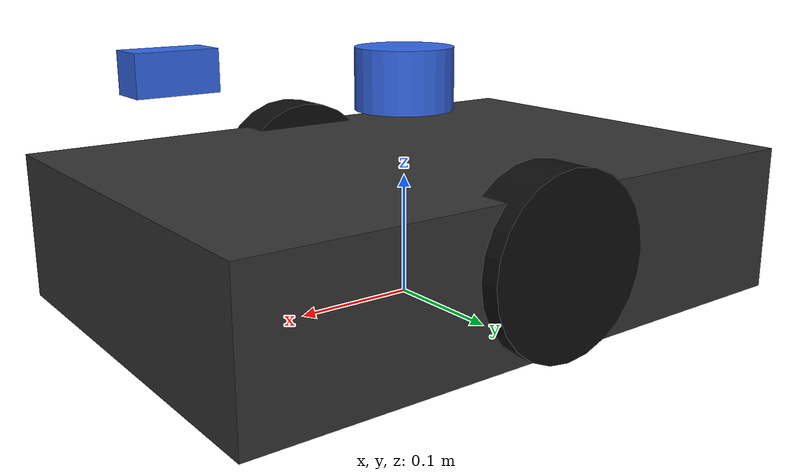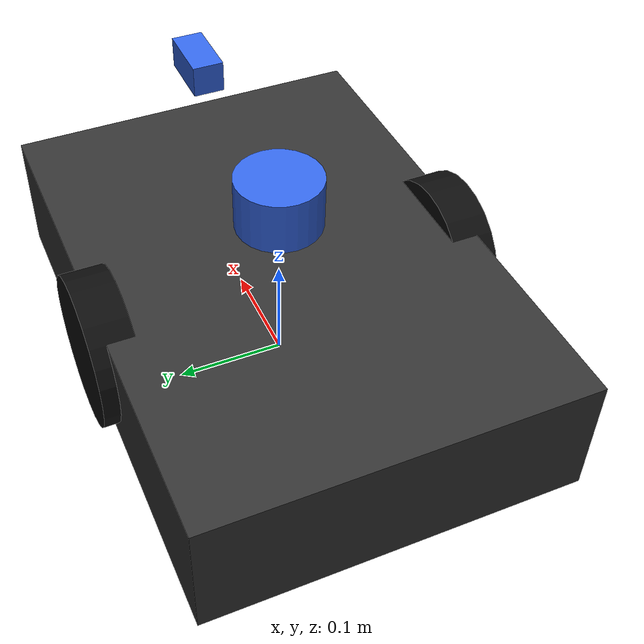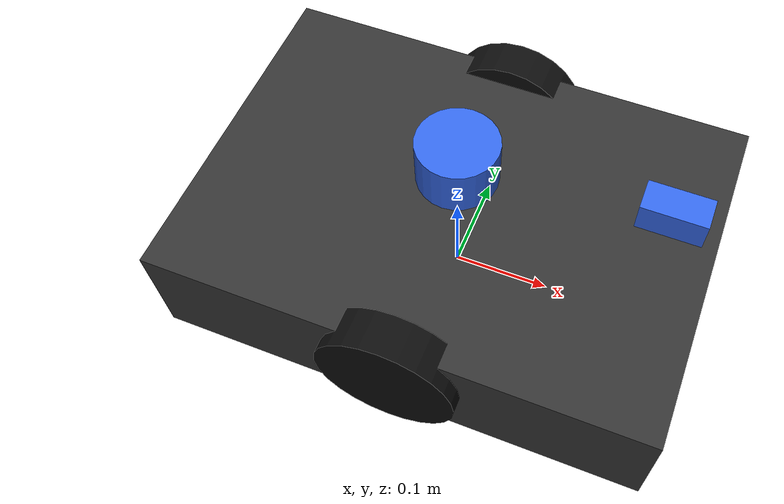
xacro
<?xml version="1.0"?>
<robot name="warehouse_amr" xmlns:xacro="http://www.ros.org/wiki/xacro">
  <xacro:arg name="use_ros2_control" default="true"/>

  <xacro:property name="base_length" value="0.50"/>
  <xacro:property name="base_width" value="0.35"/>
  <xacro:property name="base_height" value="0.12"/>
  <xacro:property name="wheel_radius" value="0.07"/>
  <xacro:property name="wheel_width" value="0.04"/>
  <xacro:property name="wheel_separation" value="0.34"/>
  <xacro:property name="caster_offset_ratio" value="2.5"/>
  <xacro:property name="caster_radius" value="0.04"/>
  <xacro:property name="camera_front_offset" value="0.05"/>

  <xacro:include filename="$(find amr_description)/urdf/materials.xacro"/>
  <xacro:include filename="$(find amr_description)/urdf/base.xacro"/>
  <xacro:include filename="$(find amr_description)/urdf/sensors.xacro"/>
  <xacro:include filename="$(find amr_description)/urdf/ros2_control.xacro"/>

  <xacro:amr_base
    base_length="${base_length}"
    base_width="${base_width}"
    base_height="${base_height}"
    wheel_radius="${wheel_radius}"
    wheel_width="${wheel_width}"
    wheel_separation="${wheel_separation}"
    caster_offset_ratio="${caster_offset_ratio}"
    caster_radius="${caster_radius}"/>

  <xacro:amr_sensors
    base_length="${base_length}"
    base_height="${base_height}"
    camera_front_offset="${camera_front_offset}"/>

  <xacro:if value="$(arg use_ros2_control)">
    <xacro:amr_ros2_control
      wheel_radius="${wheel_radius}"
      wheel_separation="${wheel_separation}"
      wheel_width="${wheel_width}"/>
  </xacro:if>
</robot>

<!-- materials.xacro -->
<robot xmlns:xacro="http://www.ros.org/wiki/xacro">
  <material name="dark_gray"><color rgba="0.2 0.2 0.2 1.0"/></material>
  <material name="light_gray"><color rgba="0.7 0.7 0.7 1.0"/></material>
  <material name="black"><color rgba="0.05 0.05 0.05 1.0"/></material>
  <material name="sensor_blue"><color rgba="0.2 0.4 0.9 1.0"/></material>
</robot>

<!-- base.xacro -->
<robot xmlns:xacro="http://www.ros.org/wiki/xacro">
  <xacro:macro name="amr_base" params="base_length base_width base_height wheel_radius wheel_width wheel_separation caster_offset_ratio caster_radius">
    <link name="base_link">
      <visual>
        <origin xyz="0 0 ${base_height/2.0}"/>
        <geometry><box size="${base_length} ${base_width} ${base_height}"/></geometry>
        <material name="dark_gray"/>
      </visual>
      <collision>
        <origin xyz="0 0 ${base_height/2.0}"/>
        <geometry><box size="${base_length} ${base_width} ${base_height}"/></geometry>
      </collision>
      <inertial>
        <origin xyz="0 0 ${base_height/2.0}"/>
        <mass value="12.0"/>
        <inertia ixx="0.22" ixy="0.0" ixz="0.0" iyy="0.45" iyz="0.0" izz="0.60"/>
      </inertial>
    </link>

    <link name="left_wheel_link">
      <visual>
        <origin rpy="1.5708 0 0"/>
        <geometry><cylinder radius="${wheel_radius}" length="${wheel_width}"/></geometry>
        <material name="black"/>
      </visual>
      <collision>
        <origin rpy="1.5708 0 0"/>
        <geometry><cylinder radius="${wheel_radius}" length="${wheel_width}"/></geometry>
      </collision>
      <inertial>
        <mass value="0.6"/>
        <inertia ixx="0.001" ixy="0.0" ixz="0.0" iyy="0.001" iyz="0.0" izz="0.001"/>
      </inertial>
    </link>

    <link name="right_wheel_link">
      <visual>
        <origin rpy="1.5708 0 0"/>
        <geometry><cylinder radius="${wheel_radius}" length="${wheel_width}"/></geometry>
        <material name="black"/>
      </visual>
      <collision>
        <origin rpy="1.5708 0 0"/>
        <geometry><cylinder radius="${wheel_radius}" length="${wheel_width}"/></geometry>
      </collision>
      <inertial>
        <mass value="0.6"/>
        <inertia ixx="0.001" ixy="0.0" ixz="0.0" iyy="0.001" iyz="0.0" izz="0.001"/>
      </inertial>
    </link>

    <joint name="left_wheel_joint" type="continuous">
      <parent link="base_link"/>
      <child link="left_wheel_link"/>
      <origin xyz="0 ${wheel_separation/2.0} ${wheel_radius}"/>
      <axis xyz="0 1 0"/>
    </joint>

    <joint name="right_wheel_joint" type="continuous">
      <parent link="base_link"/>
      <child link="right_wheel_link"/>
      <origin xyz="0 -${wheel_separation/2.0} ${wheel_radius}"/>
      <axis xyz="0 1 0"/>
    </joint>

    <link name="caster_link">
      <visual>
        <geometry><sphere radius="${caster_radius}"/></geometry>
        <material name="light_gray"/>
      </visual>
      <collision>
        <geometry><sphere radius="${caster_radius}"/></geometry>
      </collision>
      <inertial>
        <mass value="0.2"/>
        <inertia ixx="0.0005" ixy="0.0" ixz="0.0" iyy="0.0005" iyz="0.0" izz="0.0005"/>
      </inertial>
    </link>

    <joint name="caster_joint" type="fixed">
      <parent link="base_link"/>
      <child link="caster_link"/>
      <origin xyz="-${base_length/caster_offset_ratio} 0 ${caster_radius}"/>
    </joint>
  </xacro:macro>
</robot>

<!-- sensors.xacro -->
<robot xmlns:xacro="http://www.ros.org/wiki/xacro">
  <xacro:macro name="amr_sensors" params="base_length base_height camera_front_offset">
    <link name="lidar_link">
      <visual>
        <geometry><cylinder radius="0.04" length="0.05"/></geometry>
        <material name="sensor_blue"/>
      </visual>
      <collision>
        <geometry><cylinder radius="0.04" length="0.05"/></geometry>
      </collision>
      <inertial>
        <mass value="0.3"/>
        <inertia ixx="0.0004" ixy="0.0" ixz="0.0" iyy="0.0004" iyz="0.0" izz="0.0002"/>
      </inertial>
    </link>

    <joint name="lidar_joint" type="fixed">
      <parent link="base_link"/>
      <child link="lidar_link"/>
      <origin xyz="0 0 ${base_height + 0.06}"/>
    </joint>

    <link name="camera_link">
      <visual>
        <geometry><box size="0.06 0.03 0.03"/></geometry>
        <material name="sensor_blue"/>
      </visual>
      <collision>
        <geometry><box size="0.06 0.03 0.03"/></geometry>
      </collision>
      <inertial>
        <mass value="0.15"/>
        <inertia ixx="0.0001" ixy="0.0" ixz="0.0" iyy="0.0001" iyz="0.0" izz="0.0001"/>
      </inertial>
    </link>

    <joint name="camera_joint" type="fixed">
      <parent link="base_link"/>
      <child link="camera_link"/>
      <origin xyz="${base_length/2.0 - camera_front_offset} 0 ${base_height + 0.08}"/>
    </joint>
  </xacro:macro>
</robot>
